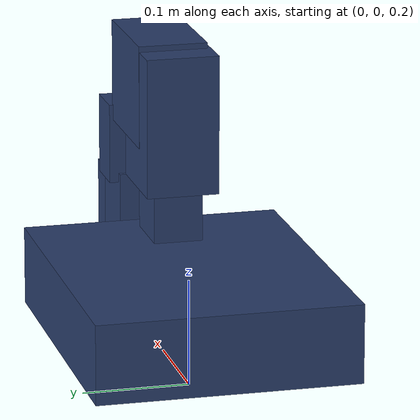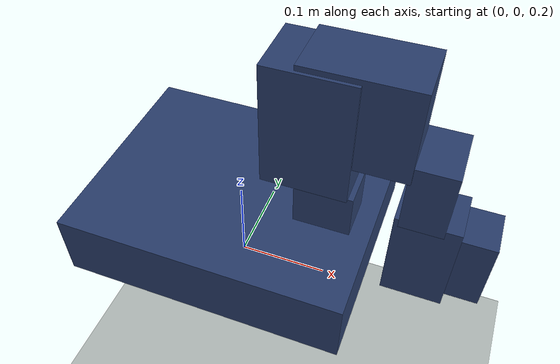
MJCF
<mujoco model="Sai_Agent_001_locomotion">
  <compiler angle="radian" inertiafromgeom="false" autolimits="true" fusestatic="true" />
  <option timestep=".002" integrator="implicitfast" iterations="20" cone="pyramidal" ls_iterations="8" />
  <default>
    <geom density="0" friction=".8 .002 .0002" condim="4" solref=".006 1" contype="1" conaffinity="6" />
    <joint damping=".03" armature=".002" />
  </default>
  <visual>
    <global offwidth="1280" offheight="800" fovy="38" />
    <headlight ambient=".55 .55 .55" diffuse=".65 .65 .65" />
  </visual>
  <asset />
  <worldbody>
    <light pos="1 -2 4" dir="-.2 .4 -1" />
    <geom name="ground" type="plane" size="20 20 .1" rgba=".70 .73 .72 1" contype="2" conaffinity="5" />
    <body name="chassis" pos="0 0 .224">
      <freejoint name="floating_base" />
      <inertial pos="-0.00298935184472 0.00147360009768 0.00771891735136" mass="3.6410854990026498" fullinertia="0.0241230792903 0.0187868532614 0.0337982038644 -0.000371696436636 -0.000943447771971 -0.00030462885049" />
      <geom name="chassis_contact_0" type="box" rgba=".18 .22 .28 1" group="3" pos="0 0 -0.014" size="0.12 0.067 0.041" />
      <geom name="chassis_contact_1" type="box" rgba=".18 .22 .28 1" group="3" pos="-0.08975 0 0.038" size="0.05175 0.111 0.001" />
      <body name="front_left_haa" pos="0.08 0.1 0.000812737446806">
        <joint name="front_left_haa" type="hinge" axis="1 0 0" limited="true" range="-0.45 0.45" />
        <inertial pos="0.0342709656212 0.00683191650877 -8.01433919229e-12" mass="0.3723587323657154" diaginertia="0.000199865871851 0.000194857044869 0.000203824049134" />
        <geom name="front_left_haa_contact_0" type="capsule" rgba=".18 .22 .28 1" group="3" size="0.013" fromto="0 0 0 0.035 0.032 0" />
        <body name="front_left_upper" pos="0.035 0.032 0">
          <joint name="front_left_hip" type="hinge" axis="0 1 0" limited="true" range="-0.7 0.7" />
          <inertial pos="0.0463471772177 -0.0187045410886 -0.0693661033796" mass="0.40217792249786893" diaginertia="0.000364553482906 0.000406376960963 0.000294139286778" />
          <geom name="front_left_upper_contact_0" type="capsule" rgba=".18 .22 .28 1" group="3" size="0.013" fromto="0 0 0 0.05 0.004 -0.0748331477355" />
          <body name="front_left_lower" pos="0.05 0.004 -0.0748331477355">
            <joint name="front_left_knee" type="hinge" axis="0 1 0" limited="true" range="-1.2 1.2" />
            <inertial pos="-0.0440686978618 -0.00981995306591 -0.0863555010871" mass="0.31016661501863596" diaginertia="0.000431227371985 0.000561188911779 0.000227997517647" />
            <geom name="front_left_lower_contact_0" type="capsule" rgba=".18 .22 .28 1" group="3" size="0.013" fromto="0 0 0 -0.05 0.004 -0.0979795897113" />
            <body name="front_left_wheel" pos="-0.05 0.004 -0.0979795897113">
              <joint name="front_left_wheel" type="hinge" axis="0 1 0" limited="false" armature=".0003" />
              <inertial pos="-6.04722522057e-11 0.00632285226548 5.3058203664e-11" mass="0.17405915776164413" diaginertia="0.000125539159543 0.0002238928282 0.00012553915954" />
              <geom name="front_left_wheel_contact_0" type="cylinder" rgba=".18 .22 .28 1" group="3" pos="0 0.006 -6.93889390391e-18" size="0.048 0.016" quat="0.7071067812 0.7071067812 0 0" />
            </body>
          </body>
        </body>
      </body>
      <body name="front_right_haa" pos="0.08 -0.1 0.000812737446806">
        <joint name="front_right_haa" type="hinge" axis="1 0 0" limited="true" range="-0.45 0.45" />
        <inertial pos="0.0342709656212 -0.00683191650877 -8.01433919229e-12" mass="0.3723587323657154" diaginertia="0.000199865871851 0.000194857044869 0.000203824049134" />
        <geom name="front_right_haa_contact_0" type="capsule" rgba=".18 .22 .28 1" group="3" size="0.013" fromto="0 0 0 0.035 -0.032 0" />
        <body name="front_right_upper" pos="0.035 -0.032 0">
          <joint name="front_right_hip" type="hinge" axis="0 -1 0" limited="true" range="-0.7 0.7" />
          <inertial pos="0.0463471772177 0.0187045410886 -0.0693661033796" mass="0.40217792249786893" diaginertia="0.000364553482906 0.000406376960963 0.000294139286778" />
          <geom name="front_right_upper_contact_0" type="capsule" rgba=".18 .22 .28 1" group="3" size="0.013" fromto="0 0 0 0.05 -0.004 -0.0748331477355" />
          <body name="front_right_lower" pos="0.05 -0.004 -0.0748331477355">
            <joint name="front_right_knee" type="hinge" axis="0 -1 0" limited="true" range="-1.2 1.2" />
            <inertial pos="-0.0440686978618 0.00981995306591 -0.0863555010871" mass="0.31016661501863596" diaginertia="0.000431227371985 0.000561188911779 0.000227997517647" />
            <geom name="front_right_lower_contact_0" type="capsule" rgba=".18 .22 .28 1" group="3" size="0.013" fromto="0 0 0 -0.05 -0.004 -0.0979795897113" />
            <body name="front_right_wheel" pos="-0.05 -0.004 -0.0979795897113">
              <joint name="front_right_wheel" type="hinge" axis="0 -1 0" limited="false" armature=".0003" />
              <inertial pos="-6.04722244502e-11 -0.00632285226942 4.76915312797e-11" mass="0.17405915776164413" diaginertia="0.000125539159531 0.000223892828193 0.000125539159534" />
              <geom name="front_right_wheel_contact_0" type="cylinder" rgba=".18 .22 .28 1" group="3" pos="0 -0.006 0" size="0.048 0.016" quat="0.7071067812 0.7071067812 0 0" />
            </body>
          </body>
        </body>
      </body>
      <body name="rear_left_haa" pos="-0.08 0.1 0.000812737446806">
        <joint name="rear_left_haa" type="hinge" axis="-1 0 0" limited="true" range="-0.45 0.45" />
        <inertial pos="-0.034264076584 0.00683318988792 -1.32119593044e-11" mass="0.37244752934390074" diaginertia="0.000199905693304 0.000194963114375 0.000203913128607" />
        <geom name="rear_left_haa_contact_0" type="capsule" rgba=".18 .22 .28 1" group="3" size="0.013" fromto="0 0 0 -0.035 0.032 0" />
        <body name="rear_left_upper" pos="-0.035 0.032 0">
          <joint name="rear_left_hip" type="hinge" axis="0 1 0" limited="true" range="-0.7 0.7" />
          <inertial pos="-0.0463471771951 -0.0187045410886 -0.0693661033709" mass="0.40217792249786904" diaginertia="0.000364553483123 0.000406376961706 0.000294139287305" />
          <geom name="rear_left_upper_contact_0" type="capsule" rgba=".18 .22 .28 1" group="3" size="0.013" fromto="0 0 0 -0.05 0.004 -0.0748331477355" />
          <body name="rear_left_lower" pos="-0.05 0.004 -0.0748331477355">
            <joint name="rear_left_knee" type="hinge" axis="0 1 0" limited="true" range="-1.2 1.2" />
            <inertial pos="0.0440674458366 -0.0098199291105 -0.0863548839576" mass="0.31016661501863474" diaginertia="0.000431232016121 0.000561198072359 0.000228002320568" />
            <geom name="rear_left_lower_contact_0" type="capsule" rgba=".18 .22 .28 1" group="3" size="0.013" fromto="0 0 0 0.05 0.004 -0.0979795897113" />
            <body name="rear_left_wheel" pos="0.05 0.004 -0.0979795897113">
              <joint name="rear_left_wheel" type="hinge" axis="0 1 0" limited="false" armature=".0003" />
              <inertial pos="6.04722383279e-11 0.00632285226548 5.3058203664e-11" mass="0.17405915776164413" diaginertia="0.000125539159543 0.0002238928282 0.00012553915954" />
              <geom name="rear_left_wheel_contact_0" type="cylinder" rgba=".18 .22 .28 1" group="3" pos="0 0.006 -6.93889390391e-18" size="0.048 0.016" quat="0.7071067812 0.7071067812 0 0" />
            </body>
          </body>
        </body>
      </body>
      <body name="rear_right_haa" pos="-0.08 -0.1 0.000812737446806">
        <joint name="rear_right_haa" type="hinge" axis="-1 0 0" limited="true" range="-0.45 0.45" />
        <inertial pos="-0.034264076584 -0.00683318988792 -1.32119593044e-11" mass="0.37244752934390074" diaginertia="0.000199905693304 0.000194963114375 0.000203913128607" />
        <geom name="rear_right_haa_contact_0" type="capsule" rgba=".18 .22 .28 1" group="3" size="0.013" fromto="0 0 0 -0.035 -0.032 0" />
        <body name="rear_right_upper" pos="-0.035 -0.032 0">
          <joint name="rear_right_hip" type="hinge" axis="0 -1 0" limited="true" range="-0.7 0.7" />
          <inertial pos="-0.0463471771951 0.0187045410886 -0.0693661033709" mass="0.40217792249786904" diaginertia="0.000364553483123 0.000406376961706 0.000294139287305" />
          <geom name="rear_right_upper_contact_0" type="capsule" rgba=".18 .22 .28 1" group="3" size="0.013" fromto="0 0 0 -0.05 -0.004 -0.0748331477355" />
          <body name="rear_right_lower" pos="-0.05 -0.004 -0.0748331477355">
            <joint name="rear_right_knee" type="hinge" axis="0 -1 0" limited="true" range="-1.2 1.2" />
            <inertial pos="0.0440674458366 0.0098199291105 -0.0863548839576" mass="0.3101666150186348" diaginertia="0.000431232016121 0.000561198072359 0.000228002320568" />
            <geom name="rear_right_lower_contact_0" type="capsule" rgba=".18 .22 .28 1" group="3" size="0.013" fromto="0 0 0 0.05 -0.004 -0.0979795897113" />
            <body name="rear_right_wheel" pos="0.05 -0.004 -0.0979795897113">
              <joint name="rear_right_wheel" type="hinge" axis="0 -1 0" limited="false" armature=".0003" />
              <inertial pos="6.04722244502e-11 -0.00632285226942 4.76915174019e-11" mass="0.17405915776164413" diaginertia="0.000125539159531 0.000223892828193 0.000125539159534" />
              <geom name="rear_right_wheel_contact_0" type="cylinder" rgba=".18 .22 .28 1" group="3" pos="0 -0.006 0" size="0.048 0.016" quat="0.7071067812 0.7071067812 0 0" />
            </body>
          </body>
        </body>
      </body>
      <body name="arm_pan_carrier" pos="0.0829005675302 -0.00754322258164 0.0990352254596">
        <inertial pos="0.0309482904656 -0.000290851973271 0.0286545953193" mass="0.100006" fullinertia="8.37599111071e-05 8.10392497007e-05 2.39784391922e-05 -7.0001726628e-08 -1.13503329235e-06 3.08931523289e-07" />
        <body name="arm_upper" pos="0.0308154616789 -0.0140569833466 0.0574784730244">
          <inertial pos="-0.037784432436 0.0148955417296 0.0821331889017" mass="0.103" fullinertia="0.000137817195373 0.000142473996879 5.03140077478e-05 -3.69885111737e-07 3.62337518043e-05 1.11433506196e-06" />
          <body name="arm_lower" pos="-0.0323374633476 0.00123991543968 0.111456963537">
            <inertial pos="0.0772031252982 0.0167187637965 -0.0603454254614" mass="0.104" fullinertia="7.55871826708e-05 0.000145256357677 0.000113034259652 -1.98680708213e-06 6.32361086809e-05 1.31818299616e-06" />
            <body name="arm_wrist" pos="0.10595264946 0.00215761038458 -0.0823815700565">
              <inertial pos="0.0103744575781 0.0260050537775 -0.0368917279501" mass="0.079" fullinertia="3.60465156126e-05 2.09242655562e-05 2.62465188312e-05 -1.10157277038e-06 2.86890329292e-06 3.42476869992e-06" />
              <body name="arm_gripper" pos="0.0152535597155 0.0177511593298 -0.0559687873944">
                <inertial pos="0.0108743027078 0.00934591363135 -0.0273724997083" mass="0.10464642748535534" fullinertia="7.73647478802e-05 5.36430740862e-05 8.50682941137e-05 -1.7645594699e-05 -6.57626876314e-06 6.33001321591e-08" />
                <body name="arm_moving_jaw" pos="0.0263557971162 0.0160525292818 -0.0204553255103">
                  <inertial pos="0.015869416688 -0.0165173572708 -0.0256869905565" mass="0.012" fullinertia="5.35818847474e-06 5.28528549974e-06 3.14849602552e-06 -8.39803562572e-08 2.11066781905e-06 1.13284546713e-07" />
                  <geom name="arm_moving_jaw_locomotion_envelope" type="box" pos="0.015330215305228365 -0.01637567928496928 -0.03197949132083108" size="0.025422385360107116 0.02412154925231786 0.042043621464837116" rgba=".16 .24 .42 1" />
                </body>
                <camera name="wrist_camera" pos="0.0376619309362 0.0567115173589 -0.0334055735951" xyaxes="-0.181321129551 -0.727685850774 0.661510355597 0.983103093055 -0.151306287627 0.103027742622" fovy="67" />
                <site name="tool_center" pos="0.0331204572774 0.000775813237427 -0.0961817421381" size=".002" rgba="1 .2 .2 0" />
                <geom name="arm_gripper_locomotion_envelope" type="box" pos="0.0004403405614314959 -0.0017859143167887875 -0.05309451076306043" size="0.03226453099138435 0.02685000466904368 0.05435835076640916" rgba=".16 .24 .42 1" />
              </body>
              <geom name="arm_wrist_locomotion_envelope" type="box" pos="0.00995450571862938 0.020018309746301075 -0.025472273868885342" size="0.022019795115652774 0.03164156970127313 0.038004794200282244" rgba=".16 .24 .42 1" />
            </body>
            <geom name="arm_lower_locomotion_envelope" type="box" pos="0.042688828864808306 0.017767715463818817 -0.0359146997593669" size="0.054727688982462025 0.03235367499107268 0.04837261045961405" rgba=".16 .24 .42 1" />
          </body>
          <geom name="arm_upper_locomotion_envelope" type="box" pos="-0.03147918836970833 0.017172096255290745 0.05324513044541146" size="0.04357473624429436 0.03393937572223124 0.06534067988821957" rgba=".16 .24 .42 1" />
        </body>
        <geom name="arm_pan_carrier_locomotion_envelope" type="box" pos="0.01790000046166701 -0.00026049947791665154 -0.0007223296705484439" size="0.02990000113904548 0.02307330048163292 0.042247291420137584" rgba=".16 .24 .42 1" />
      </body>
      <body name="cargo_slide_-1" pos="-0.0620000005215 -0.089999999851 0.05349999547">
        <inertial pos="0.021645209106 -0.00522298465111 0.00103383779136" mass="0.03902668286855703" fullinertia="1.11849457607e-05 3.72937526949e-05 4.46616402595e-05 -6.72366389981e-06 2.54149139734e-07 3.72055903478e-07" />
        <geom name="cargo_slide_-1_contact_0" type="box" rgba=".18 .22 .28 1" group="3" pos="0 0 0" size="0.0209999997169 0.00799999758601 0.0139999985695" />
      </body>
      <body name="cargo_slide_1" pos="-0.0620000005215 0.089999999851 0.05349999547">
        <inertial pos="0.018433011491 0.00517679575002 0.00101425104277" mass="0.03884671441858212" fullinertia="1.10993641058e-05 2.50501370712e-05 3.23561712479e-05 5.04224632683e-06 -3.55081223878e-07 -3.68412062273e-07" />
        <geom name="cargo_slide_1_contact_0" type="box" rgba=".18 .22 .28 1" group="3" pos="0 0 0" size="0.0209999997169 0.00799999758601 0.0139999985695" />
      </body>
      <body name="cargo_rotor" pos="0.003 0.088 0.045">
        <inertial pos="-6.35388427463e-09 4.28888827231e-10 -0.00137367501445" mass="0.01892" fullinertia="2.14771533962e-06 2.1477157658e-06 3.40043528679e-06 -3.17690997023e-13 1.22099769409e-13 -1.49717085832e-14" />
      </body>
      <camera name="main_camera" pos="0.164569427081 0.07 0.0699222662043" xyaxes="0 -1 0 0.707106781187 0 0.707106781187" fovy="67" />
      <geom name="chassis_locomotion_envelope" type="box" pos="-4.321895183817537e-07 -3.725910304591684e-07 0.054350978675993825" size="0.1516495796821043 0.12164961560273076 0.03679902957750343" rgba=".16 .24 .42 1" />
    </body>
  </worldbody>
  <actuator>
    <motor name="front_left_haa_motor" joint="front_left_haa" ctrlrange="-8 8" forcerange="-8 8" />
    <motor name="front_left_hip_motor" joint="front_left_hip" ctrlrange="-8 8" forcerange="-8 8" />
    <motor name="front_left_knee_motor" joint="front_left_knee" ctrlrange="-8 8" forcerange="-8 8" />
    <motor name="front_left_wheel_motor" joint="front_left_wheel" ctrlrange="-1.3 1.3" forcerange="-1.3 1.3" />
    <motor name="front_right_haa_motor" joint="front_right_haa" ctrlrange="-8 8" forcerange="-8 8" />
    <motor name="front_right_hip_motor" joint="front_right_hip" ctrlrange="-8 8" forcerange="-8 8" />
    <motor name="front_right_knee_motor" joint="front_right_knee" ctrlrange="-8 8" forcerange="-8 8" />
    <motor name="front_right_wheel_motor" joint="front_right_wheel" ctrlrange="-1.3 1.3" forcerange="-1.3 1.3" />
    <motor name="rear_left_haa_motor" joint="rear_left_haa" ctrlrange="-8 8" forcerange="-8 8" />
    <motor name="rear_left_hip_motor" joint="rear_left_hip" ctrlrange="-8 8" forcerange="-8 8" />
    <motor name="rear_left_knee_motor" joint="rear_left_knee" ctrlrange="-8 8" forcerange="-8 8" />
    <motor name="rear_left_wheel_motor" joint="rear_left_wheel" ctrlrange="-1.3 1.3" forcerange="-1.3 1.3" />
    <motor name="rear_right_haa_motor" joint="rear_right_haa" ctrlrange="-8 8" forcerange="-8 8" />
    <motor name="rear_right_hip_motor" joint="rear_right_hip" ctrlrange="-8 8" forcerange="-8 8" />
    <motor name="rear_right_knee_motor" joint="rear_right_knee" ctrlrange="-8 8" forcerange="-8 8" />
    <motor name="rear_right_wheel_motor" joint="rear_right_wheel" ctrlrange="-1.3 1.3" forcerange="-1.3 1.3" />
  </actuator>
</mujoco>
